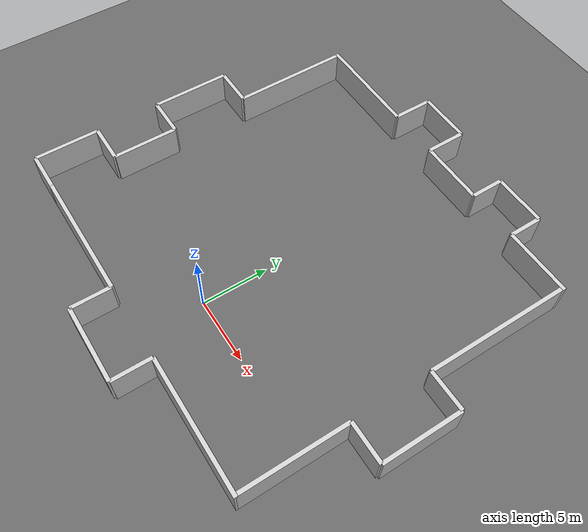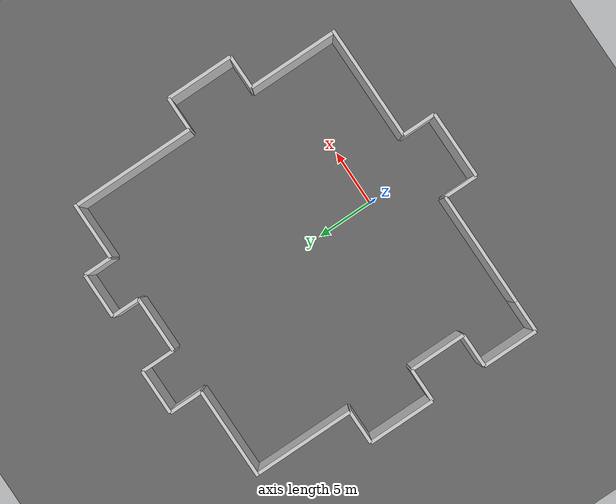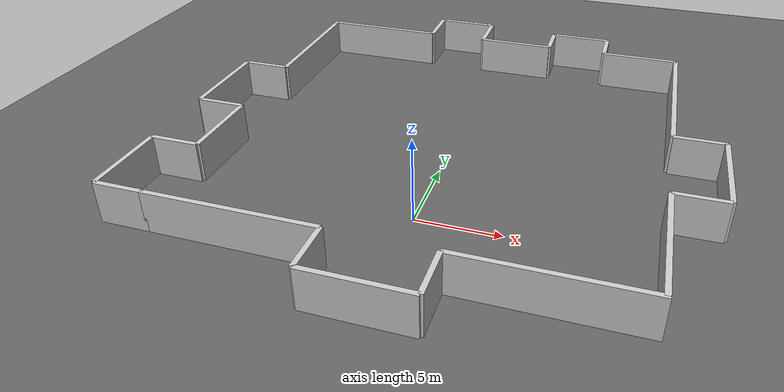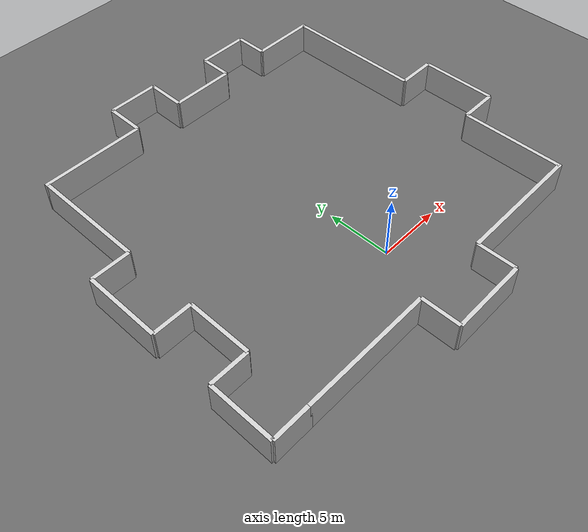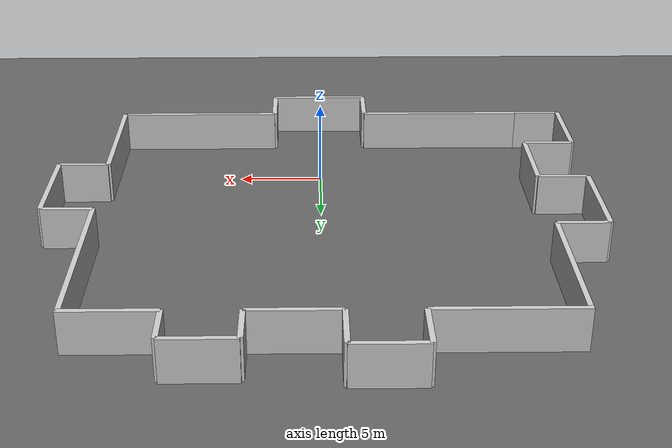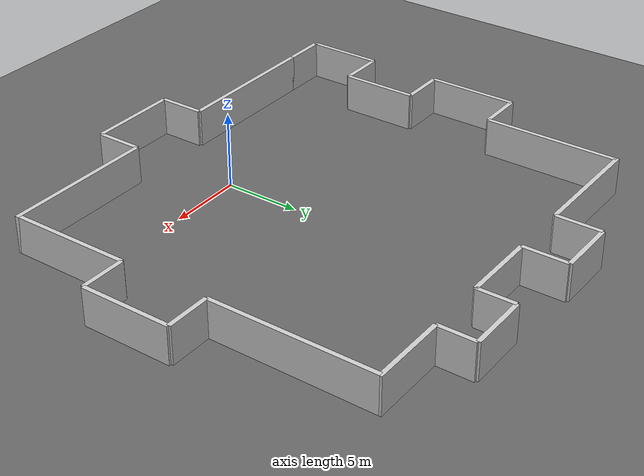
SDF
<?xml version="1.0"?>
<sdf version="1.9">
  <world name="icp_world">

    <physics name="default_physics" type="ode">
      <max_step_size>0.001</max_step_size>
      <real_time_factor>1.0</real_time_factor>
      <real_time_update_rate>1000</real_time_update_rate>
    </physics>

    <plugin filename="ignition-gazebo-physics-system"
            name="gz::sim::systems::Physics"/>
    <plugin filename="ignition-gazebo-user-commands-system"
            name="gz::sim::systems::UserCommands"/>
    <plugin filename="ignition-gazebo-scene-broadcaster-system"
            name="gz::sim::systems::SceneBroadcaster"/>
    <plugin filename="ignition-gazebo-sensors-system"
            name="gz::sim::systems::Sensors">
      <render_engine>ogre2</render_engine>
    </plugin>

    <light name="sun" type="directional">
      <cast_shadows>true</cast_shadows>
      <pose>0 0 10 0 0 0</pose>
      <diffuse>0.8 0.8 0.8 1</diffuse>
      <specular>0.2 0.2 0.2 1</specular>
      <direction>-0.5 0.1 -0.9</direction>
    </light>

    <model name="ground_plane">
      <static>true</static>
      <link name="link">
        <collision name="col">
          <geometry><plane><normal>0 0 1</normal><size>200 200</size></plane></geometry>
        </collision>
        <visual name="vis">
          <geometry><plane><normal>0 0 1</normal><size>200 200</size></plane></geometry>
          <material><ambient>0.4 0.4 0.4 1</ambient><diffuse>0.4 0.4 0.4 1</diffuse></material>
        </visual>
      </link>
    </model>

    <model name="N1"><static>true</static><pose>-9.075 20 1.25 0 0 0</pose>
      <link name="link">
        <collision name="col"><geometry><box><size>8.15 0.3 2.5</size></box></geometry></collision>
        <visual name="vis"><geometry><box><size>8.15 0.3 2.5</size></box></geometry>
          <material><ambient>0.8 0.8 0.8 1</ambient><diffuse>0.8 0.8 0.8 1</diffuse></material></visual>
      </link>
    </model>

    <!-- Alcove A -->
    <model name="NA_lw"><static>true</static><pose>-5 21.5 1.25 0 0 0</pose>
      <link name="link">
        <collision name="col"><geometry><box><size>0.3 3.0 2.5</size></box></geometry></collision>
        <visual name="vis"><geometry><box><size>0.3 3.0 2.5</size></box></geometry>
          <material><ambient>0.8 0.8 0.8 1</ambient><diffuse>0.8 0.8 0.8 1</diffuse></material></visual>
      </link>
    </model>
    <model name="NA_bk"><static>true</static><pose>-3 23 1.25 0 0 0</pose>
      <link name="link">
        <collision name="col"><geometry><box><size>4.0 0.3 2.5</size></box></geometry></collision>
        <visual name="vis"><geometry><box><size>4.0 0.3 2.5</size></box></geometry>
          <material><ambient>0.8 0.8 0.8 1</ambient><diffuse>0.8 0.8 0.8 1</diffuse></material></visual>
      </link>
    </model>
    <model name="NA_rw"><static>true</static><pose>-1 21.5 1.25 0 0 0</pose>
      <link name="link">
        <collision name="col"><geometry><box><size>0.3 3.0 2.5</size></box></geometry></collision>
        <visual name="vis"><geometry><box><size>0.3 3.0 2.5</size></box></geometry>
          <material><ambient>0.8 0.8 0.8 1</ambient><diffuse>0.8 0.8 0.8 1</diffuse></material></visual>
      </link>
    </model>

    <model name="N2"><static>true</static><pose>1.5 20 1.25 0 0 0</pose>
      <link name="link">
        <collision name="col"><geometry><box><size>5.0 0.3 2.5</size></box></geometry></collision>
        <visual name="vis"><geometry><box><size>5.0 0.3 2.5</size></box></geometry>
          <material><ambient>0.8 0.8 0.8 1</ambient><diffuse>0.8 0.8 0.8 1</diffuse></material></visual>
      </link>
    </model>

    <!-- Alcove B -->
    <model name="NB_lw"><static>true</static><pose>4 21.25 1.25 0 0 0</pose>
      <link name="link">
        <collision name="col"><geometry><box><size>0.3 2.5 2.5</size></box></geometry></collision>
        <visual name="vis"><geometry><box><size>0.3 2.5 2.5</size></box></geometry>
          <material><ambient>0.8 0.8 0.8 1</ambient><diffuse>0.8 0.8 0.8 1</diffuse></material></visual>
      </link>
    </model>
    <model name="NB_bk"><static>true</static><pose>6 22.5 1.25 0 0 0</pose>
      <link name="link">
        <collision name="col"><geometry><box><size>4.0 0.3 2.5</size></box></geometry></collision>
        <visual name="vis"><geometry><box><size>4.0 0.3 2.5</size></box></geometry>
          <material><ambient>0.8 0.8 0.8 1</ambient><diffuse>0.8 0.8 0.8 1</diffuse></material></visual>
      </link>
    </model>
    <model name="NB_rw"><static>true</static><pose>8 21.25 1.25 0 0 0</pose>
      <link name="link">
        <collision name="col"><geometry><box><size>0.3 2.5 2.5</size></box></geometry></collision>
        <visual name="vis"><geometry><box><size>0.3 2.5 2.5</size></box></geometry>
          <material><ambient>0.8 0.8 0.8 1</ambient><diffuse>0.8 0.8 0.8 1</diffuse></material></visual>
      </link>
    </model>

    <model name="N3"><static>true</static><pose>10.575 20 1.25 0 0 0</pose>
      <link name="link">
        <collision name="col"><geometry><box><size>5.15 0.3 2.5</size></box></geometry></collision>
        <visual name="vis"><geometry><box><size>5.15 0.3 2.5</size></box></geometry>
          <material><ambient>0.8 0.8 0.8 1</ambient><diffuse>0.8 0.8 0.8 1</diffuse></material></visual>
      </link>
    </model>

    <model name="S1"><static>true</static><pose>-8.075 -5 1.25 0 0 0</pose>
      <link name="link">
        <collision name="col"><geometry><box><size>10.15 0.3 2.5</size></box></geometry></collision>
        <visual name="vis"><geometry><box><size>10.15 0.3 2.5</size></box></geometry>
          <material><ambient>0.8 0.8 0.8 1</ambient><diffuse>0.8 0.8 0.8 1</diffuse></material></visual>
      </link>
    </model>

    <!-- Alcove C -->
    <model name="SC_lw"><static>true</static><pose>-3 -6.5 1.25 0 0 0</pose>
      <link name="link">
        <collision name="col"><geometry><box><size>0.3 3.0 2.5</size></box></geometry></collision>
        <visual name="vis"><geometry><box><size>0.3 3.0 2.5</size></box></geometry>
          <material><ambient>0.8 0.8 0.8 1</ambient><diffuse>0.8 0.8 0.8 1</diffuse></material></visual>
      </link>
    </model>
    <model name="SC_bk"><static>true</static><pose>0 -8 1.25 0 0 0</pose>
      <link name="link">
        <collision name="col"><geometry><box><size>6.0 0.3 2.5</size></box></geometry></collision>
        <visual name="vis"><geometry><box><size>6.0 0.3 2.5</size></box></geometry>
          <material><ambient>0.8 0.8 0.8 1</ambient><diffuse>0.8 0.8 0.8 1</diffuse></material></visual>
      </link>
    </model>
    <model name="SC_rw"><static>true</static><pose>3 -6.5 1.25 0 0 0</pose>
      <link name="link">
        <collision name="col"><geometry><box><size>0.3 3.0 2.5</size></box></geometry></collision>
        <visual name="vis"><geometry><box><size>0.3 3.0 2.5</size></box></geometry>
          <material><ambient>0.8 0.8 0.8 1</ambient><diffuse>0.8 0.8 0.8 1</diffuse></material></visual>
      </link>
    </model>

    <model name="S2"><static>true</static><pose>8.075 -5 1.25 0 0 0</pose>
      <link name="link">
        <collision name="col"><geometry><box><size>10.15 0.3 2.5</size></box></geometry></collision>
        <visual name="vis"><geometry><box><size>10.15 0.3 2.5</size></box></geometry>
          <material><ambient>0.8 0.8 0.8 1</ambient><diffuse>0.8 0.8 0.8 1</diffuse></material></visual>
      </link>
    </model>

    <model name="E1"><static>true</static><pose>13 14.5 1.25 0 0 0</pose>
      <link name="link">
        <collision name="col"><geometry><box><size>0.3 11.0 2.5</size></box></geometry></collision>
        <visual name="vis"><geometry><box><size>0.3 11.0 2.5</size></box></geometry>
          <material><ambient>0.8 0.8 0.8 1</ambient><diffuse>0.8 0.8 0.8 1</diffuse></material></visual>
      </link>
    </model>

    <!-- Alcove D -->
    <model name="ED_tw"><static>true</static><pose>14.5 9 1.25 0 0 0</pose>
      <link name="link">
        <collision name="col"><geometry><box><size>3.0 0.3 2.5</size></box></geometry></collision>
        <visual name="vis"><geometry><box><size>3.0 0.3 2.5</size></box></geometry>
          <material><ambient>0.8 0.8 0.8 1</ambient><diffuse>0.8 0.8 0.8 1</diffuse></material></visual>
      </link>
    </model>
    <model name="ED_bk"><static>true</static><pose>16 6 1.25 0 0 0</pose>
      <link name="link">
        <collision name="col"><geometry><box><size>0.3 6.0 2.5</size></box></geometry></collision>
        <visual name="vis"><geometry><box><size>0.3 6.0 2.5</size></box></geometry>
          <material><ambient>0.8 0.8 0.8 1</ambient><diffuse>0.8 0.8 0.8 1</diffuse></material></visual>
      </link>
    </model>
    <model name="ED_bw"><static>true</static><pose>14.5 3 1.25 0 0 0</pose>
      <link name="link">
        <collision name="col"><geometry><box><size>3.0 0.3 2.5</size></box></geometry></collision>
        <visual name="vis"><geometry><box><size>3.0 0.3 2.5</size></box></geometry>
          <material><ambient>0.8 0.8 0.8 1</ambient><diffuse>0.8 0.8 0.8 1</diffuse></material></visual>
      </link>
    </model>

    <model name="E2"><static>true</static><pose>13 -1 1.25 0 0 0</pose>
      <link name="link">
        <collision name="col"><geometry><box><size>0.3 8.0 2.5</size></box></geometry></collision>
        <visual name="vis"><geometry><box><size>0.3 8.0 2.5</size></box></geometry>
          <material><ambient>0.8 0.8 0.8 1</ambient><diffuse>0.8 0.8 0.8 1</diffuse></material></visual>
      </link>
    </model>

    <model name="W1"><static>true</static><pose>-13 15.5 1.25 0 0 0</pose>
      <link name="link">
        <collision name="col"><geometry><box><size>0.3 9.0 2.5</size></box></geometry></collision>
        <visual name="vis"><geometry><box><size>0.3 9.0 2.5</size></box></geometry>
          <material><ambient>0.8 0.8 0.8 1</ambient><diffuse>0.8 0.8 0.8 1</diffuse></material></visual>
      </link>
    </model>

    <!-- Alcove E -->
    <model name="WE_tw"><static>true</static><pose>-14.5 11 1.25 0 0 0</pose>
      <link name="link">
        <collision name="col"><geometry><box><size>3.0 0.3 2.5</size></box></geometry></collision>
        <visual name="vis"><geometry><box><size>3.0 0.3 2.5</size></box></geometry>
          <material><ambient>0.8 0.8 0.8 1</ambient><diffuse>0.8 0.8 0.8 1</diffuse></material></visual>
      </link>
    </model>
    <model name="WE_bk"><static>true</static><pose>-16 8 1.25 0 0 0</pose>
      <link name="link">
        <collision name="col"><geometry><box><size>0.3 6.0 2.5</size></box></geometry></collision>
        <visual name="vis"><geometry><box><size>0.3 6.0 2.5</size></box></geometry>
          <material><ambient>0.8 0.8 0.8 1</ambient><diffuse>0.8 0.8 0.8 1</diffuse></material></visual>
      </link>
    </model>
    <model name="WE_bw"><static>true</static><pose>-14.5 5 1.25 0 0 0</pose>
      <link name="link">
        <collision name="col"><geometry><box><size>3.0 0.3 2.5</size></box></geometry></collision>
        <visual name="vis"><geometry><box><size>3.0 0.3 2.5</size></box></geometry>
          <material><ambient>0.8 0.8 0.8 1</ambient><diffuse>0.8 0.8 0.8 1</diffuse></material></visual>
      </link>
    </model>

    <model name="W2"><static>true</static><pose>-13 2.5 1.25 0 0 0</pose>
      <link name="link">
        <collision name="col"><geometry><box><size>0.3 5.0 2.5</size></box></geometry></collision>
        <visual name="vis"><geometry><box><size>0.3 5.0 2.5</size></box></geometry>
          <material><ambient>0.8 0.8 0.8 1</ambient><diffuse>0.8 0.8 0.8 1</diffuse></material></visual>
      </link>
    </model>

    <!-- Alcove F -->
    <model name="WF_tw"><static>true</static><pose>-14.5 0 1.25 0 0 0</pose>
      <link name="link">
        <collision name="col"><geometry><box><size>3.0 0.3 2.5</size></box></geometry></collision>
        <visual name="vis"><geometry><box><size>3.0 0.3 2.5</size></box></geometry>
          <material><ambient>0.8 0.8 0.8 1</ambient><diffuse>0.8 0.8 0.8 1</diffuse></material></visual>
      </link>
    </model>
    <model name="WF_bk"><static>true</static><pose>-16 -2.5 1.25 0 0 0</pose>
      <link name="link">
        <collision name="col"><geometry><box><size>0.3 5.0 2.5</size></box></geometry></collision>
        <visual name="vis"><geometry><box><size>0.3 5.0 2.5</size></box></geometry>
          <material><ambient>0.8 0.8 0.8 1</ambient><diffuse>0.8 0.8 0.8 1</diffuse></material></visual>
      </link>
    </model>
    <model name="WF_bw"><static>true</static><pose>-14.5 -5 1.25 0 0 0</pose>
      <link name="link">
        <collision name="col"><geometry><box><size>3.0 0.3 2.5</size></box></geometry></collision>
        <visual name="vis"><geometry><box><size>3.0 0.3 2.5</size></box></geometry>
          <material><ambient>0.8 0.8 0.8 1</ambient><diffuse>0.8 0.8 0.8 1</diffuse></material></visual>
      </link>
    </model>

  </world>
</sdf>
